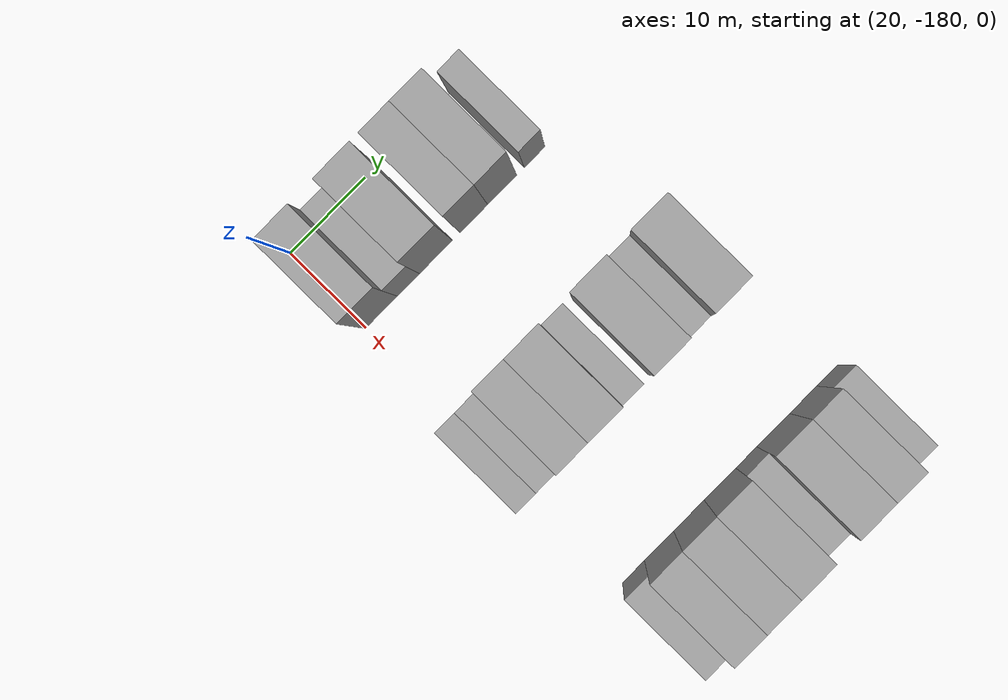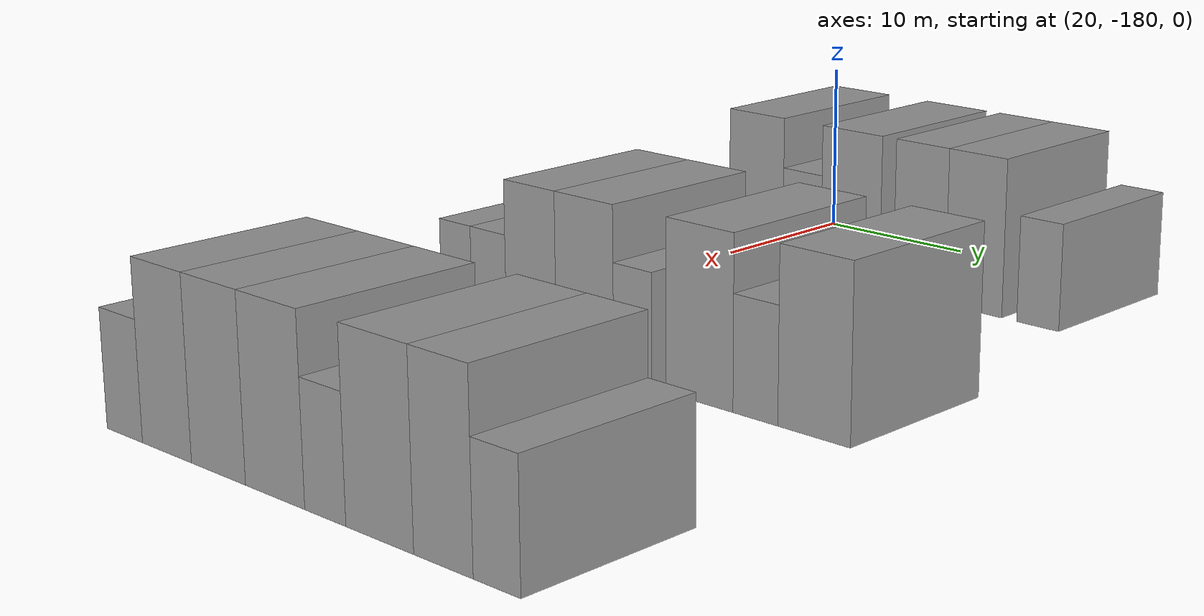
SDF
<sdf version="1.6">
 <world name="default">
  <model name="building_15">
   <static>1</static>
   <pose>25.0000 -177.9419 0 0.000000 0.000000 0.000000</pose>
   <link name="link">
    <pose>0 0 4.50 0 0 0</pose>
    <collision name="collision"><geometry><box><size>10.0000 4.2990 9.0000</size></box></geometry></collision>
    <visual name="visual">
     <cast_shadows>0</cast_shadows>
     <geometry><box><size>10.0000 4.2990 9.0000</size></box></geometry>
     <material>
      <script>
       <uri>model://grey_wall/materials/scripts</uri>
       <uri>model://grey_wall/materials/textures</uri>
       <name>vrc/grey_wall</name>
      </script>
     </material>
    </visual>
   </link>
  </model>
  <model name="building_16">
   <static>1</static>
   <pose>25.0000 -174.3163 0 0.000000 0.000000 0.000000</pose>
   <link name="link">
    <pose>0 0 3.00 0 0 0</pose>
    <collision name="collision"><geometry><box><size>10.0000 2.9522 6.0000</size></box></geometry></collision>
    <visual name="visual">
     <cast_shadows>0</cast_shadows>
     <geometry><box><size>10.0000 2.9522 6.0000</size></box></geometry>
     <material>
      <script>
       <uri>model://grey_wall/materials/scripts</uri>
       <uri>model://grey_wall/materials/textures</uri>
       <name>vrc/grey_wall</name>
      </script>
     </material>
    </visual>
   </link>
  </model>
  <model name="building_17">
   <static>1</static>
   <pose>25.0000 -170.6362 0 0.000000 0.000000 0.000000</pose>
   <link name="link">
    <pose>0 0 4.50 0 0 0</pose>
    <collision name="collision"><geometry><box><size>10.0000 4.4079 9.0000</size></box></geometry></collision>
    <visual name="visual">
     <cast_shadows>0</cast_shadows>
     <geometry><box><size>10.0000 4.4079 9.0000</size></box></geometry>
     <material>
      <script>
       <uri>model://grey_wall/materials/scripts</uri>
       <uri>model://grey_wall/materials/textures</uri>
       <name>vrc/grey_wall</name>
      </script>
     </material>
    </visual>
   </link>
  </model>
  <model name="building_18">
   <static>1</static>
   <pose>25.0000 -165.5775 0 0.000000 0.000000 0.000000</pose>
   <link name="link">
    <pose>0 0 4.50 0 0 0</pose>
    <collision name="collision"><geometry><box><size>10.0000 3.7096 9.0000</size></box></geometry></collision>
    <visual name="visual">
     <cast_shadows>0</cast_shadows>
     <geometry><box><size>10.0000 3.7096 9.0000</size></box></geometry>
     <material>
      <script>
       <uri>model://grey_wall/materials/scripts</uri>
       <uri>model://grey_wall/materials/textures</uri>
       <name>vrc/grey_wall</name>
      </script>
     </material>
    </visual>
   </link>
  </model>
  <model name="building_19">
   <static>1</static>
   <pose>25.0000 -161.7763 0 0.000000 0.000000 0.000000</pose>
   <link name="link">
    <pose>0 0 4.50 0 0 0</pose>
    <collision name="collision"><geometry><box><size>10.0000 3.8926 9.0000</size></box></geometry></collision>
    <visual name="visual">
     <cast_shadows>0</cast_shadows>
     <geometry><box><size>10.0000 3.8926 9.0000</size></box></geometry>
     <material>
      <script>
       <uri>model://grey_wall/materials/scripts</uri>
       <uri>model://grey_wall/materials/textures</uri>
       <name>vrc/grey_wall</name>
      </script>
     </material>
    </visual>
   </link>
  </model>
  <model name="building_20">
   <static>1</static>
   <pose>25.0000 -157.4546 0 0.000000 0.000000 0.000000</pose>
   <link name="link">
    <pose>0 0 3.00 0 0 0</pose>
    <collision name="collision"><geometry><box><size>10.0000 2.7508 6.0000</size></box></geometry></collision>
    <visual name="visual">
     <cast_shadows>0</cast_shadows>
     <geometry><box><size>10.0000 2.7508 6.0000</size></box></geometry>
     <material>
      <script>
       <uri>model://grey_wall/materials/scripts</uri>
       <uri>model://grey_wall/materials/textures</uri>
       <name>vrc/grey_wall</name>
      </script>
     </material>
    </visual>
   </link>
  </model>
  <model name="building_138">
   <static>1</static>
   <pose>47.0000 -180.1672 0 0.000000 0.000000 0.000000</pose>
   <link name="link">
    <pose>0 0 3.00 0 0 0</pose>
    <collision name="collision"><geometry><box><size>10.0000 2.4840 6.0000</size></box></geometry></collision>
    <visual name="visual">
     <cast_shadows>0</cast_shadows>
     <geometry><box><size>10.0000 2.4840 6.0000</size></box></geometry>
     <material>
      <script>
       <uri>model://grey_wall/materials/scripts</uri>
       <uri>model://grey_wall/materials/textures</uri>
       <name>vrc/grey_wall</name>
      </script>
     </material>
    </visual>
   </link>
  </model>
  <model name="building_139">
   <static>1</static>
   <pose>47.0000 -177.5576 0 0.000000 0.000000 0.000000</pose>
   <link name="link">
    <pose>0 0 3.00 0 0 0</pose>
    <collision name="collision"><geometry><box><size>10.0000 2.7351 6.0000</size></box></geometry></collision>
    <visual name="visual">
     <cast_shadows>0</cast_shadows>
     <geometry><box><size>10.0000 2.7351 6.0000</size></box></geometry>
     <material>
      <script>
       <uri>model://grey_wall/materials/scripts</uri>
       <uri>model://grey_wall/materials/textures</uri>
       <name>vrc/grey_wall</name>
      </script>
     </material>
    </visual>
   </link>
  </model>
  <model name="building_140">
   <static>1</static>
   <pose>47.0000 -174.2832 0 0.000000 0.000000 0.000000</pose>
   <link name="link">
    <pose>0 0 4.50 0 0 0</pose>
    <collision name="collision"><geometry><box><size>10.0000 3.8138 9.0000</size></box></geometry></collision>
    <visual name="visual">
     <cast_shadows>0</cast_shadows>
     <geometry><box><size>10.0000 3.8138 9.0000</size></box></geometry>
     <material>
      <script>
       <uri>model://grey_wall/materials/scripts</uri>
       <uri>model://grey_wall/materials/textures</uri>
       <name>vrc/grey_wall</name>
      </script>
     </material>
    </visual>
   </link>
  </model>
  <model name="building_141">
   <static>1</static>
   <pose>47.0000 -170.2713 0 0.000000 0.000000 0.000000</pose>
   <link name="link">
    <pose>0 0 4.50 0 0 0</pose>
    <collision name="collision"><geometry><box><size>10.0000 4.2100 9.0000</size></box></geometry></collision>
    <visual name="visual">
     <cast_shadows>0</cast_shadows>
     <geometry><box><size>10.0000 4.2100 9.0000</size></box></geometry>
     <material>
      <script>
       <uri>model://grey_wall/materials/scripts</uri>
       <uri>model://grey_wall/materials/textures</uri>
       <name>vrc/grey_wall</name>
      </script>
     </material>
    </visual>
   </link>
  </model>
  <model name="building_142">
   <static>1</static>
   <pose>47.0000 -166.8256 0 0.000000 0.000000 0.000000</pose>
   <link name="link">
    <pose>0 0 3.00 0 0 0</pose>
    <collision name="collision"><geometry><box><size>10.0000 2.6813 6.0000</size></box></geometry></collision>
    <visual name="visual">
     <cast_shadows>0</cast_shadows>
     <geometry><box><size>10.0000 2.6813 6.0000</size></box></geometry>
     <material>
      <script>
       <uri>model://grey_wall/materials/scripts</uri>
       <uri>model://grey_wall/materials/textures</uri>
       <name>vrc/grey_wall</name>
      </script>
     </material>
    </visual>
   </link>
  </model>
  <model name="building_143">
   <static>1</static>
   <pose>47.0000 -162.2559 0 0.000000 0.000000 0.000000</pose>
   <link name="link">
    <pose>0 0 4.50 0 0 0</pose>
    <collision name="collision"><geometry><box><size>10.0000 4.4582 9.0000</size></box></geometry></collision>
    <visual name="visual">
     <cast_shadows>0</cast_shadows>
     <geometry><box><size>10.0000 4.4582 9.0000</size></box></geometry>
     <material>
      <script>
       <uri>model://grey_wall/materials/scripts</uri>
       <uri>model://grey_wall/materials/textures</uri>
       <name>vrc/grey_wall</name>
      </script>
     </material>
    </visual>
   </link>
  </model>
  <model name="building_144">
   <static>1</static>
   <pose>47.0000 -158.5936 0 0.000000 0.000000 0.000000</pose>
   <link name="link">
    <pose>0 0 3.00 0 0 0</pose>
    <collision name="collision"><geometry><box><size>10.0000 2.8662 6.0000</size></box></geometry></collision>
    <visual name="visual">
     <cast_shadows>0</cast_shadows>
     <geometry><box><size>10.0000 2.8662 6.0000</size></box></geometry>
     <material>
      <script>
       <uri>model://grey_wall/materials/scripts</uri>
       <uri>model://grey_wall/materials/textures</uri>
       <name>vrc/grey_wall</name>
      </script>
     </material>
    </visual>
   </link>
  </model>
  <model name="building_145">
   <static>1</static>
   <pose>47.0000 -154.9402 0 0.000000 0.000000 0.000000</pose>
   <link name="link">
    <pose>0 0 4.50 0 0 0</pose>
    <collision name="collision"><geometry><box><size>10.0000 4.4407 9.0000</size></box></geometry></collision>
    <visual name="visual">
     <cast_shadows>0</cast_shadows>
     <geometry><box><size>10.0000 4.4407 9.0000</size></box></geometry>
     <material>
      <script>
       <uri>model://grey_wall/materials/scripts</uri>
       <uri>model://grey_wall/materials/textures</uri>
       <name>vrc/grey_wall</name>
      </script>
     </material>
    </visual>
   </link>
  </model>
  <model name="building_258">
   <static>1</static>
   <pose>69.0000 -178.6587 0 0.000000 0.000000 0.000000</pose>
   <link name="link">
    <pose>0 0 3.00 0 0 0</pose>
    <collision name="collision"><geometry><box><size>10.0000 2.9379 6.0000</size></box></geometry></collision>
    <visual name="visual">
     <cast_shadows>0</cast_shadows>
     <geometry><box><size>10.0000 2.9379 6.0000</size></box></geometry>
     <material>
      <script>
       <uri>model://grey_wall/materials/scripts</uri>
       <uri>model://grey_wall/materials/textures</uri>
       <name>vrc/grey_wall</name>
      </script>
     </material>
    </visual>
   </link>
  </model>
  <model name="building_259">
   <static>1</static>
   <pose>69.0000 -175.2358 0 0.000000 0.000000 0.000000</pose>
   <link name="link">
    <pose>0 0 4.50 0 0 0</pose>
    <collision name="collision"><geometry><box><size>10.0000 3.9079 9.0000</size></box></geometry></collision>
    <visual name="visual">
     <cast_shadows>0</cast_shadows>
     <geometry><box><size>10.0000 3.9079 9.0000</size></box></geometry>
     <material>
      <script>
       <uri>model://grey_wall/materials/scripts</uri>
       <uri>model://grey_wall/materials/textures</uri>
       <name>vrc/grey_wall</name>
      </script>
     </material>
    </visual>
   </link>
  </model>
  <model name="building_260">
   <static>1</static>
   <pose>69.0000 -171.2341 0 0.000000 0.000000 0.000000</pose>
   <link name="link">
    <pose>0 0 4.50 0 0 0</pose>
    <collision name="collision"><geometry><box><size>10.0000 4.0954 9.0000</size></box></geometry></collision>
    <visual name="visual">
     <cast_shadows>0</cast_shadows>
     <geometry><box><size>10.0000 4.0954 9.0000</size></box></geometry>
     <material>
      <script>
       <uri>model://grey_wall/materials/scripts</uri>
       <uri>model://grey_wall/materials/textures</uri>
       <name>vrc/grey_wall</name>
      </script>
     </material>
    </visual>
   </link>
  </model>
  <model name="building_261">
   <static>1</static>
   <pose>69.0000 -167.0655 0 0.000000 0.000000 0.000000</pose>
   <link name="link">
    <pose>0 0 4.50 0 0 0</pose>
    <collision name="collision"><geometry><box><size>10.0000 4.2419 9.0000</size></box></geometry></collision>
    <visual name="visual">
     <cast_shadows>0</cast_shadows>
     <geometry><box><size>10.0000 4.2419 9.0000</size></box></geometry>
     <material>
      <script>
       <uri>model://grey_wall/materials/scripts</uri>
       <uri>model://grey_wall/materials/textures</uri>
       <name>vrc/grey_wall</name>
      </script>
     </material>
    </visual>
   </link>
  </model>
  <model name="building_262">
   <static>1</static>
   <pose>69.0000 -163.5430 0 0.000000 0.000000 0.000000</pose>
   <link name="link">
    <pose>0 0 3.00 0 0 0</pose>
    <collision name="collision"><geometry><box><size>10.0000 2.8030 6.0000</size></box></geometry></collision>
    <visual name="visual">
     <cast_shadows>0</cast_shadows>
     <geometry><box><size>10.0000 2.8030 6.0000</size></box></geometry>
     <material>
      <script>
       <uri>model://grey_wall/materials/scripts</uri>
       <uri>model://grey_wall/materials/textures</uri>
       <name>vrc/grey_wall</name>
      </script>
     </material>
    </visual>
   </link>
  </model>
  <model name="building_263">
   <static>1</static>
   <pose>69.0000 -159.9416 0 0.000000 0.000000 0.000000</pose>
   <link name="link">
    <pose>0 0 4.50 0 0 0</pose>
    <collision name="collision"><geometry><box><size>10.0000 4.3998 9.0000</size></box></geometry></collision>
    <visual name="visual">
     <cast_shadows>0</cast_shadows>
     <geometry><box><size>10.0000 4.3998 9.0000</size></box></geometry>
     <material>
      <script>
       <uri>model://grey_wall/materials/scripts</uri>
       <uri>model://grey_wall/materials/textures</uri>
       <name>vrc/grey_wall</name>
      </script>
     </material>
    </visual>
   </link>
  </model>
  <model name="building_264">
   <static>1</static>
   <pose>69.0000 -155.9217 0 0.000000 0.000000 0.000000</pose>
   <link name="link">
    <pose>0 0 4.50 0 0 0</pose>
    <collision name="collision"><geometry><box><size>10.0000 3.6400 9.0000</size></box></geometry></collision>
    <visual name="visual">
     <cast_shadows>0</cast_shadows>
     <geometry><box><size>10.0000 3.6400 9.0000</size></box></geometry>
     <material>
      <script>
       <uri>model://grey_wall/materials/scripts</uri>
       <uri>model://grey_wall/materials/textures</uri>
       <name>vrc/grey_wall</name>
      </script>
     </material>
    </visual>
   </link>
  </model>
  <model name="building_265">
   <static>1</static>
   <pose>69.0000 -152.7120 0 0.000000 0.000000 0.000000</pose>
   <link name="link">
    <pose>0 0 3.00 0 0 0</pose>
    <collision name="collision"><geometry><box><size>10.0000 2.7795 6.0000</size></box></geometry></collision>
    <visual name="visual">
     <cast_shadows>0</cast_shadows>
     <geometry><box><size>10.0000 2.7795 6.0000</size></box></geometry>
     <material>
      <script>
       <uri>model://grey_wall/materials/scripts</uri>
       <uri>model://grey_wall/materials/textures</uri>
       <name>vrc/grey_wall</name>
      </script>
     </material>
    </visual>
   </link>
  </model>
 </world>
</sdf>
